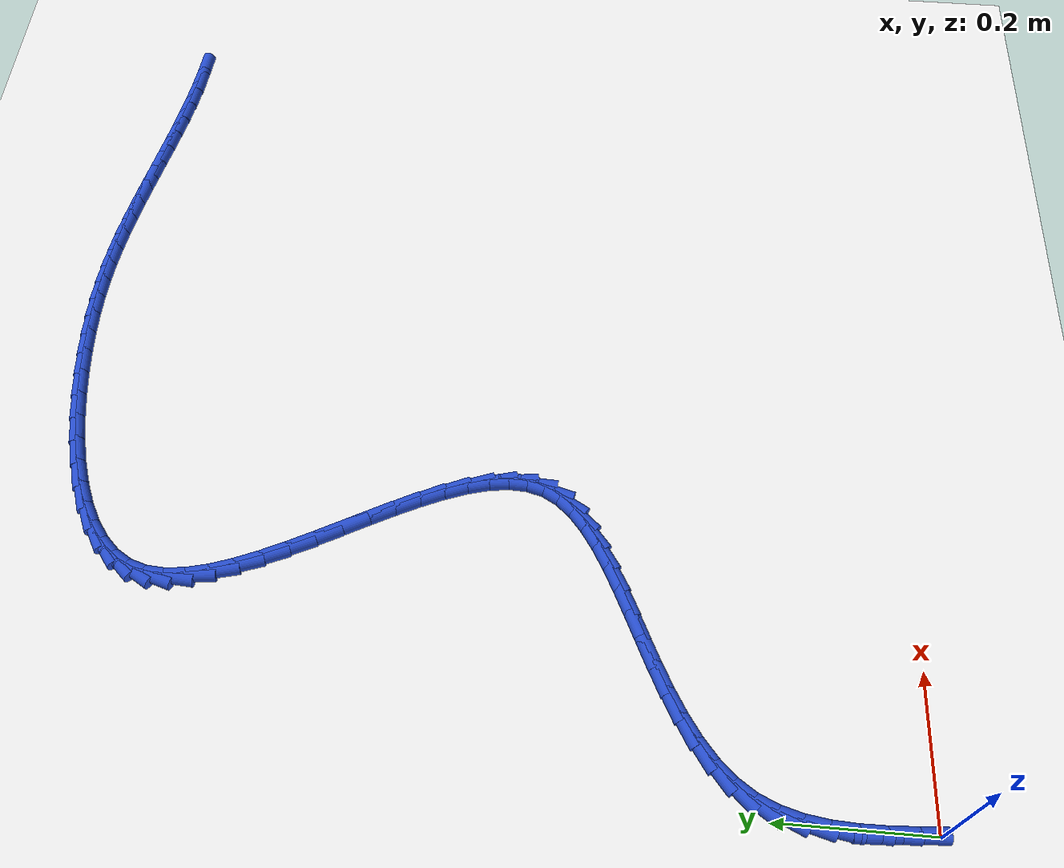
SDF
<sdf version="1.6">
 <world name="default">
  <model name="ground_plane">
   <static>1</static>
   <link name="link">
    <collision name="collision">
     <geometry><plane><normal>0 0 1</normal><size>100 100</size></plane></geometry>
     <surface><friction><ode><mu>100</mu><mu2>50</mu2></ode></friction></surface>
    </collision>
    <visual name="visual">
     <cast_shadows>0</cast_shadows>
     <geometry><plane><normal>0 0 1</normal><size>100 100</size></plane></geometry>
     <material>
      <script><uri>file://media/materials/scripts/gazebo.material</uri><name>Gazebo/WhiteGlow</name></script>
     </material>
    </visual>
   </link>
  </model>
  <model name="line">
   <link name="link_1">
    <pose>-0.002258916926638522 0.032813291596592624 0.01 0 1.57 -1.5216071057443248</pose>
    <collision name="collision">
     <geometry><cylinder><radius>0.01</radius><length>0.08</length></cylinder></geometry>
    </collision>
    <visual name="visual">
     <material>
      <script><name>Gazebo/Blue</name><uri>file://media/materials/scripts/gazebo.material</uri></script>
     </material>
     <geometry><cylinder><radius>0.01</radius><length>0.08</length></cylinder></geometry>
    </visual>
   </link>
   <link name="link_2">
    <pose>-0.0038874369943561913 0.06589384006792409 0.01 0 1.57 -1.5622753820476794</pose>
    <collision name="collision">
     <geometry><cylinder><radius>0.01</radius><length>0.08</length></cylinder></geometry>
    </collision>
    <visual name="visual">
     <material>
      <script><name>Gazebo/Blue</name><uri>file://media/materials/scripts/gazebo.material</uri></script>
     </material>
     <geometry><cylinder><radius>0.01</radius><length>0.08</length></cylinder></geometry>
    </visual>
   </link>
   <link name="link_3">
    <pose>-0.004167445133524468 0.09875420598255086 0.01 0 1.57 1.5152868049445425</pose>
    <collision name="collision">
     <geometry><cylinder><radius>0.01</radius><length>0.08</length></cylinder></geometry>
    </collision>
    <visual name="visual">
     <material>
      <script><name>Gazebo/Blue</name><uri>file://media/materials/scripts/gazebo.material</uri></script>
     </material>
     <geometry><cylinder><radius>0.01</radius><length>0.08</length></cylinder></geometry>
    </visual>
   </link>
   <link name="link_4">
    <pose>-0.002380826274514836 0.13090694990902918 0.01 0 1.57 1.4241909426000947</pose>
    <collision name="collision">
     <geometry><cylinder><radius>0.01</radius><length>0.08</length></cylinder></geometry>
    </collision>
    <visual name="visual">
     <material>
      <script><name>Gazebo/Blue</name><uri>file://media/materials/scripts/gazebo.material</uri></script>
     </material>
     <geometry><cylinder><radius>0.01</radius><length>0.08</length></cylinder></geometry>
    </visual>
   </link>
   <link name="link_5">
    <pose>0.0021905346523012105 0.16186463241591556 0.01 0 1.57 1.301682611133771</pose>
    <collision name="collision">
     <geometry><cylinder><radius>0.01</radius><length>0.08</length></cylinder></geometry>
    </collision>
    <visual name="visual">
     <material>
      <script><name>Gazebo/Blue</name><uri>file://media/materials/scripts/gazebo.material</uri></script>
     </material>
     <geometry><cylinder><radius>0.01</radius><length>0.08</length></cylinder></geometry>
    </visual>
   </link>
   <link name="link_6">
    <pose>0.010264752716552202 0.19113981407176636 0.01 0 1.57 1.1449449397419291</pose>
    <collision name="collision">
     <geometry><cylinder><radius>0.01</radius><length>0.08</length></cylinder></geometry>
    </collision>
    <visual name="visual">
     <material>
      <script><name>Gazebo/Blue</name><uri>file://media/materials/scripts/gazebo.material</uri></script>
     </material>
     <geometry><cylinder><radius>0.01</radius><length>0.08</length></cylinder></geometry>
    </visual>
   </link>
   <link name="link_7">
    <pose>0.022559942987866632 0.21824505544513784 0.01 0 1.57 0.9621370964178155</pose>
    <collision name="collision">
     <geometry><cylinder><radius>0.01</radius><length>0.08</length></cylinder></geometry>
    </collision>
    <visual name="visual">
     <material>
      <script><name>Gazebo/Blue</name><uri>file://media/materials/scripts/gazebo.material</uri></script>
     </material>
     <geometry><cylinder><radius>0.01</radius><length>0.08</length></cylinder></geometry>
    </visual>
   </link>
   <link name="link_8">
    <pose>0.039653928674670505 0.24277278142348785 0.01 0 1.57 0.7976940992005873</pose>
    <collision name="collision">
     <geometry><cylinder><radius>0.01</radius><length>0.08</length></cylinder></geometry>
    </collision>
    <visual name="visual">
     <material>
      <script><name>Gazebo/Blue</name><uri>file://media/materials/scripts/gazebo.material</uri></script>
     </material>
     <geometry><cylinder><radius>0.01</radius><length>0.08</length></cylinder></geometry>
    </visual>
   </link>
   <link name="link_9">
    <pose>0.06119146496127196 0.2648465869963455 0.01 0 1.57 0.66901977606405</pose>
    <collision name="collision">
     <geometry><cylinder><radius>0.01</radius><length>0.08</length></cylinder></geometry>
    </collision>
    <visual name="visual">
     <material>
      <script><name>Gazebo/Blue</name><uri>file://media/materials/scripts/gazebo.material</uri></script>
     </material>
     <geometry><cylinder><radius>0.01</radius><length>0.08</length></cylinder></geometry>
    </visual>
   </link>
   <link name="link_10">
    <pose>0.08643651870270493 0.2848068395326385 0.01 0 1.57 0.5725710399899394</pose>
    <collision name="collision">
     <geometry><cylinder><radius>0.01</radius><length>0.08</length></cylinder></geometry>
    </collision>
    <visual name="visual">
     <material>
      <script><name>Gazebo/Blue</name><uri>file://media/materials/scripts/gazebo.material</uri></script>
     </material>
     <geometry><cylinder><radius>0.01</radius><length>0.08</length></cylinder></geometry>
    </visual>
   </link>
   <link name="link_11">
    <pose>0.11465193104637088 0.3029945472358558 0.01 0 1.57 0.5030810664577722</pose>
    <collision name="collision">
     <geometry><cylinder><radius>0.01</radius><length>0.08</length></cylinder></geometry>
    </collision>
    <visual name="visual">
     <material>
      <script><name>Gazebo/Blue</name><uri>file://media/materials/scripts/gazebo.material</uri></script>
     </material>
     <geometry><cylinder><radius>0.01</radius><length>0.08</length></cylinder></geometry>
    </visual>
   </link>
   <link name="link_12">
    <pose>0.14510054313967136 0.319750718309486 0.01 0 1.57 0.45593777381615547</pose>
    <collision name="collision">
     <geometry><cylinder><radius>0.01</radius><length>0.08</length></cylinder></geometry>
    </collision>
    <visual name="visual">
     <material>
      <script><name>Gazebo/Blue</name><uri>file://media/materials/scripts/gazebo.material</uri></script>
     </material>
     <geometry><cylinder><radius>0.01</radius><length>0.08</length></cylinder></geometry>
    </visual>
   </link>
   <link name="link_13">
    <pose>0.17704519613000783 0.3354163609570181 0.01 0 1.57 0.42791610944207825</pose>
    <collision name="collision">
     <geometry><cylinder><radius>0.01</radius><length>0.08</length></cylinder></geometry>
    </collision>
    <visual name="visual">
     <material>
      <script><name>Gazebo/Blue</name><uri>file://media/materials/scripts/gazebo.material</uri></script>
     </material>
     <geometry><cylinder><radius>0.01</radius><length>0.08</length></cylinder></geometry>
    </visual>
   </link>
   <link name="link_14">
    <pose>0.20974873116478177 0.350332483381941 0.01 0 1.57 0.41728111065739104</pose>
    <collision name="collision">
     <geometry><cylinder><radius>0.01</radius><length>0.08</length></cylinder></geometry>
    </collision>
    <visual name="visual">
     <material>
      <script><name>Gazebo/Blue</name><uri>file://media/materials/scripts/gazebo.material</uri></script>
     </material>
     <geometry><cylinder><radius>0.01</radius><length>0.08</length></cylinder></geometry>
    </visual>
   </link>
   <link name="link_15">
    <pose>0.24247398939139475 0.36484009378774346 0.01 0 1.57 0.423780656820157</pose>
    <collision name="collision">
     <geometry><cylinder><radius>0.01</radius><length>0.08</length></cylinder></geometry>
    </collision>
    <visual name="visual">
     <material>
      <script><name>Gazebo/Blue</name><uri>file://media/materials/scripts/gazebo.material</uri></script>
     </material>
     <geometry><cylinder><radius>0.01</radius><length>0.08</length></cylinder></geometry>
    </visual>
   </link>
   <link name="link_16">
    <pose>0.27448381195724836 0.3792802003779146 0.01 0 1.57 0.4487464978163053</pose>
    <collision name="collision">
     <geometry><cylinder><radius>0.01</radius><length>0.08</length></cylinder></geometry>
    </collision>
    <visual name="visual">
     <material>
      <script><name>Gazebo/Blue</name><uri>file://media/materials/scripts/gazebo.material</uri></script>
     </material>
     <geometry><cylinder><radius>0.01</radius><length>0.08</length></cylinder></geometry>
    </visual>
   </link>
   <link name="link_17">
    <pose>0.3050410400097441 0.39399381135594297 0.01 0 1.57 0.4953976195313095</pose>
    <collision name="collision">
     <geometry><cylinder><radius>0.01</radius><length>0.08</length></cylinder></geometry>
    </collision>
    <visual name="visual">
     <material>
      <script><name>Gazebo/Blue</name><uri>file://media/materials/scripts/gazebo.material</uri></script>
     </material>
     <geometry><cylinder><radius>0.01</radius><length>0.08</length></cylinder></geometry>
    </visual>
   </link>
   <link name="link_18">
    <pose>0.3334085146962832 0.40932193492531765 0.01 0 1.57 0.5693601594862281</pose>
    <collision name="collision">
     <geometry><cylinder><radius>0.01</radius><length>0.08</length></cylinder></geometry>
    </collision>
    <visual name="visual">
     <material>
      <script><name>Gazebo/Blue</name><uri>file://media/materials/scripts/gazebo.material</uri></script>
     </material>
     <geometry><cylinder><radius>0.01</radius><length>0.08</length></cylinder></geometry>
    </visual>
   </link>
   <link name="link_19">
    <pose>0.35884907716426745 0.42560557928952747 0.01 0 1.57 0.6791766678790981</pose>
    <collision name="collision">
     <geometry><cylinder><radius>0.01</radius><length>0.08</length></cylinder></geometry>
    </collision>
    <visual name="visual">
     <material>
      <script><name>Gazebo/Blue</name><uri>file://media/materials/scripts/gazebo.material</uri></script>
     </material>
     <geometry><cylinder><radius>0.01</radius><length>0.08</length></cylinder></geometry>
    </visual>
   </link>
   <link name="link_20">
    <pose>0.38062556856109836 0.4431857526520613 0.01 0 1.57 0.835705487997839</pose>
    <collision name="collision">
     <geometry><cylinder><radius>0.01</radius><length>0.08</length></cylinder></geometry>
    </collision>
    <visual name="visual">
     <material>
      <script><name>Gazebo/Blue</name><uri>file://media/materials/scripts/gazebo.material</uri></script>
     </material>
     <geometry><cylinder><radius>0.01</radius><length>0.08</length></cylinder></geometry>
    </visual>
   </link>
   <link name="link_21">
    <pose>0.39800083003417747 0.462403463216408 0.01 0 1.57 1.0472255539942117</pose>
    <collision name="collision">
     <geometry><cylinder><radius>0.01</radius><length>0.08</length></cylinder></geometry>
    </collision>
    <visual name="visual">
     <material>
      <script><name>Gazebo/Blue</name><uri>file://media/materials/scripts/gazebo.material</uri></script>
     </material>
     <geometry><cylinder><radius>0.01</radius><length>0.08</length></cylinder></geometry>
    </visual>
   </link>
   <link name="link_22">
    <pose>0.410237702730906 0.48359971918605643 0.01 0 1.57 1.3004957251476283</pose>
    <collision name="collision">
     <geometry><cylinder><radius>0.01</radius><length>0.08</length></cylinder></geometry>
    </collision>
    <visual name="visual">
     <material>
      <script><name>Gazebo/Blue</name><uri>file://media/materials/scripts/gazebo.material</uri></script>
     </material>
     <geometry><cylinder><radius>0.01</radius><length>0.08</length></cylinder></geometry>
    </visual>
   </link>
   <link name="link_23">
    <pose>0.4167371741477261 0.5070565888664732 0.01 0 1.57 1.5288175513280917</pose>
    <collision name="collision">
     <geometry><cylinder><radius>0.01</radius><length>0.08</length></cylinder></geometry>
    </collision>
    <visual name="visual">
     <material>
      <script><name>Gazebo/Blue</name><uri>file://media/materials/scripts/gazebo.material</uri></script>
     </material>
     <geometry><cylinder><radius>0.01</radius><length>0.08</length></cylinder></geometry>
    </visual>
   </link>
   <link name="link_24">
    <pose>0.4178128895889665 0.5326667567068034 0.01 0 1.57 -1.4383247169666176</pose>
    <collision name="collision">
     <geometry><cylinder><radius>0.01</radius><length>0.08</length></cylinder></geometry>
    </collision>
    <visual name="visual">
     <material>
      <script><name>Gazebo/Blue</name><uri>file://media/materials/scripts/gazebo.material</uri></script>
     </material>
     <geometry><cylinder><radius>0.01</radius><length>0.08</length></cylinder></geometry>
    </visual>
   </link>
   <link name="link_25">
    <pose>0.4141486992704831 0.5601649598786541 0.01 0 1.57 -1.3116784470120486</pose>
    <collision name="collision">
     <geometry><cylinder><radius>0.01</radius><length>0.08</length></cylinder></geometry>
    </collision>
    <visual name="visual">
     <material>
      <script><name>Gazebo/Blue</name><uri>file://media/materials/scripts/gazebo.material</uri></script>
     </material>
     <geometry><cylinder><radius>0.01</radius><length>0.08</length></cylinder></geometry>
    </visual>
   </link>
   <link name="link_26">
    <pose>0.40642951176340913 0.5892854840082056 0.01 0 1.57 -1.2218316629321162</pose>
    <collision name="collision">
     <geometry><cylinder><radius>0.01</radius><length>0.08</length></cylinder></geometry>
    </collision>
    <visual name="visual">
     <material>
      <script><name>Gazebo/Blue</name><uri>file://media/materials/scripts/gazebo.material</uri></script>
     </material>
     <geometry><cylinder><radius>0.01</radius><length>0.08</length></cylinder></geometry>
    </visual>
   </link>
   <link name="link_27">
    <pose>0.39534023563887816 0.6197626147216379 0.01 0 1.57 -1.159358208141954</pose>
    <collision name="collision">
     <geometry><cylinder><radius>0.01</radius><length>0.08</length></cylinder></geometry>
    </collision>
    <visual name="visual">
     <material>
      <script><name>Gazebo/Blue</name><uri>file://media/materials/scripts/gazebo.material</uri></script>
     </material>
     <geometry><cylinder><radius>0.01</radius><length>0.08</length></cylinder></geometry>
    </visual>
   </link>
   <link name="link_28">
    <pose>0.3815657794680231 0.6513306376451315 0.01 0 1.57 -1.1176216918937338</pose>
    <collision name="collision">
     <geometry><cylinder><radius>0.01</radius><length>0.08</length></cylinder></geometry>
    </collision>
    <visual name="visual">
     <material>
      <script><name>Gazebo/Blue</name><uri>file://media/materials/scripts/gazebo.material</uri></script>
     </material>
     <geometry><cylinder><radius>0.01</radius><length>0.08</length></cylinder></geometry>
    </visual>
   </link>
   <link name="link_29">
    <pose>0.36579105182197763 0.6837238384048671 0.01 0 1.57 -1.0923596198112473</pose>
    <collision name="collision">
     <geometry><cylinder><radius>0.01</radius><length>0.08</length></cylinder></geometry>
    </collision>
    <visual name="visual">
     <material>
      <script><name>Gazebo/Blue</name><uri>file://media/materials/scripts/gazebo.material</uri></script>
     </material>
     <geometry><cylinder><radius>0.01</radius><length>0.08</length></cylinder></geometry>
    </visual>
   </link>
   <link name="link_30">
    <pose>0.3487009612718749 0.7166765026270242 0.01 0 1.57 -1.0810937129273226</pose>
    <collision name="collision">
     <geometry><cylinder><radius>0.01</radius><length>0.08</length></cylinder></geometry>
    </collision>
    <visual name="visual">
     <material>
      <script><name>Gazebo/Blue</name><uri>file://media/materials/scripts/gazebo.material</uri></script>
     </material>
     <geometry><cylinder><radius>0.01</radius><length>0.08</length></cylinder></geometry>
    </visual>
   </link>
   <link name="link_31">
    <pose>0.3309804163888484 0.7499229159377837 0.01 0 1.57 -1.0827192904570244</pose>
    <collision name="collision">
     <geometry><cylinder><radius>0.01</radius><length>0.08</length></cylinder></geometry>
    </collision>
    <visual name="visual">
     <material>
      <script><name>Gazebo/Blue</name><uri>file://media/materials/scripts/gazebo.material</uri></script>
     </material>
     <geometry><cylinder><radius>0.01</radius><length>0.08</length></cylinder></geometry>
    </visual>
   </link>
   <link name="link_32">
    <pose>0.3133143257440314 0.783197363963326 0.01 0 1.57 -1.0973094606091522</pose>
    <collision name="collision">
     <geometry><cylinder><radius>0.01</radius><length>0.08</length></cylinder></geometry>
    </collision>
    <visual name="visual">
     <material>
      <script><name>Gazebo/Blue</name><uri>file://media/materials/scripts/gazebo.material</uri></script>
     </material>
     <geometry><cylinder><radius>0.01</radius><length>0.08</length></cylinder></geometry>
    </visual>
   </link>
   <link name="link_33">
    <pose>0.29638759790855707 0.8162341323298307 0.01 0 1.57 -1.1261172318951667</pose>
    <collision name="collision">
     <geometry><cylinder><radius>0.01</radius><length>0.08</length></cylinder></geometry>
    </collision>
    <visual name="visual">
     <material>
      <script><name>Gazebo/Blue</name><uri>file://media/materials/scripts/gazebo.material</uri></script>
     </material>
     <geometry><cylinder><radius>0.01</radius><length>0.08</length></cylinder></geometry>
    </visual>
   </link>
   <link name="link_34">
    <pose>0.280885141453559 0.8487675066634789 0.01 0 1.57 -1.171769951742503</pose>
    <collision name="collision">
     <geometry><cylinder><radius>0.01</radius><length>0.08</length></cylinder></geometry>
    </collision>
    <visual name="visual">
     <material>
      <script><name>Gazebo/Blue</name><uri>file://media/materials/scripts/gazebo.material</uri></script>
     </material>
     <geometry><cylinder><radius>0.01</radius><length>0.08</length></cylinder></geometry>
    </visual>
   </link>
   <link name="link_35">
    <pose>0.26749186495017024 0.8805317725904501 0.01 0 1.57 -1.2386546045010396</pose>
    <collision name="collision">
     <geometry><cylinder><radius>0.01</radius><length>0.08</length></cylinder></geometry>
    </collision>
    <visual name="visual">
     <material>
      <script><name>Gazebo/Blue</name><uri>file://media/materials/scripts/gazebo.material</uri></script>
     </material>
     <geometry><cylinder><radius>0.01</radius><length>0.08</length></cylinder></geometry>
    </visual>
   </link>
   <link name="link_36">
    <pose>0.25689267696952445 0.9112612157369254 0.01 0 1.57 -1.3334126332315617</pose>
    <collision name="collision">
     <geometry><cylinder><radius>0.01</radius><length>0.08</length></cylinder></geometry>
    </collision>
    <visual name="visual">
     <material>
      <script><name>Gazebo/Blue</name><uri>file://media/materials/scripts/gazebo.material</uri></script>
     </material>
     <geometry><cylinder><radius>0.01</radius><length>0.08</length></cylinder></geometry>
    </visual>
   </link>
   <link name="link_37">
    <pose>0.24977248608275465 0.9406901217290846 0.01 0 1.57 -1.4650897454526481</pose>
    <collision name="collision">
     <geometry><cylinder><radius>0.01</radius><length>0.08</length></cylinder></geometry>
    </collision>
    <visual name="visual">
     <material>
      <script><name>Gazebo/Blue</name><uri>file://media/materials/scripts/gazebo.material</uri></script>
     </material>
     <geometry><cylinder><radius>0.01</radius><length>0.08</length></cylinder></geometry>
    </visual>
   </link>
   <link name="link_38">
    <pose>0.24681620086099437 0.9685527761931083 0.01 0 1.57 1.4982202590435205</pose>
    <collision name="collision">
     <geometry><cylinder><radius>0.01</radius><length>0.08</length></cylinder></geometry>
    </collision>
    <visual name="visual">
     <material>
      <script><name>Gazebo/Blue</name><uri>file://media/materials/scripts/gazebo.material</uri></script>
     </material>
     <geometry><cylinder><radius>0.01</radius><length>0.08</length></cylinder></geometry>
    </visual>
   </link>
   <link name="link_39">
    <pose>0.24870872987537687 0.9945834647551766 0.01 0 1.57 1.270220806164153</pose>
    <collision name="collision">
     <geometry><cylinder><radius>0.01</radius><length>0.08</length></cylinder></geometry>
    </collision>
    <visual name="visual">
     <material>
      <script><name>Gazebo/Blue</name><uri>file://media/materials/scripts/gazebo.material</uri></script>
     </material>
     <geometry><cylinder><radius>0.01</radius><length>0.08</length></cylinder></geometry>
    </visual>
   </link>
   <link name="link_40">
    <pose>0.2561277604412661 1.0185183729161589 0.01 0 1.57 1.0262948243847396</pose>
    <collision name="collision">
     <geometry><cylinder><radius>0.01</radius><length>0.08</length></cylinder></geometry>
    </collision>
    <visual name="visual">
     <material>
      <script><name>Gazebo/Blue</name><uri>file://media/materials/scripts/gazebo.material</uri></script>
     </material>
     <geometry><cylinder><radius>0.01</radius><length>0.08</length></cylinder></geometry>
    </visual>
   </link>
   <link name="link_41">
    <pose>0.2692696974094262 1.0402203090804834 0.01 0 1.57 0.8184200096045168</pose>
    <collision name="collision">
     <geometry><cylinder><radius>0.01</radius><length>0.08</length></cylinder></geometry>
    </collision>
    <visual name="visual">
     <material>
      <script><name>Gazebo/Blue</name><uri>file://media/materials/scripts/gazebo.material</uri></script>
     </material>
     <geometry><cylinder><radius>0.01</radius><length>0.08</length></cylinder></geometry>
    </visual>
   </link>
   <link name="link_42">
    <pose>0.28755596041702075 1.059755976215914 0.01 0 1.57 0.6537644450391985</pose>
    <collision name="collision">
     <geometry><cylinder><radius>0.01</radius><length>0.08</length></cylinder></geometry>
    </collision>
    <visual name="visual">
     <material>
      <script><name>Gazebo/Blue</name><uri>file://media/materials/scripts/gazebo.material</uri></script>
     </material>
     <geometry><cylinder><radius>0.01</radius><length>0.08</length></cylinder></geometry>
    </visual>
   </link>
   <link name="link_43">
    <pose>0.31033779546940155 1.0772105396063525 0.01 0 1.57 0.5259772832186632</pose>
    <collision name="collision">
     <geometry><cylinder><radius>0.01</radius><length>0.08</length></cylinder></geometry>
    </collision>
    <visual name="visual">
     <material>
      <script><name>Gazebo/Blue</name><uri>file://media/materials/scripts/gazebo.material</uri></script>
     </material>
     <geometry><cylinder><radius>0.01</radius><length>0.08</length></cylinder></geometry>
    </visual>
   </link>
   <link name="link_44">
    <pose>0.3369664485719204 1.092669164535702 0.01 0 1.57 0.42635663022842796</pose>
    <collision name="collision">
     <geometry><cylinder><radius>0.01</radius><length>0.08</length></cylinder></geometry>
    </collision>
    <visual name="visual">
     <material>
      <script><name>Gazebo/Blue</name><uri>file://media/materials/scripts/gazebo.material</uri></script>
     </material>
     <geometry><cylinder><radius>0.01</radius><length>0.08</length></cylinder></geometry>
    </visual>
   </link>
   <link name="link_45">
    <pose>0.3667931657299286 1.1062170162878644 0.01 0 1.57 0.34738293662290737</pose>
    <collision name="collision">
     <geometry><cylinder><radius>0.01</radius><length>0.08</length></cylinder></geometry>
    </collision>
    <visual name="visual">
     <material>
      <script><name>Gazebo/Blue</name><uri>file://media/materials/scripts/gazebo.material</uri></script>
     </material>
     <geometry><cylinder><radius>0.01</radius><length>0.08</length></cylinder></geometry>
    </visual>
   </link>
   <link name="link_46">
    <pose>0.3991691929487781 1.117939260146742 0.01 0 1.57 0.2833763517244959</pose>
    <collision name="collision">
     <geometry><cylinder><radius>0.01</radius><length>0.08</length></cylinder></geometry>
    </collision>
    <visual name="visual">
     <material>
      <script><name>Gazebo/Blue</name><uri>file://media/materials/scripts/gazebo.material</uri></script>
     </material>
     <geometry><cylinder><radius>0.01</radius><length>0.08</length></cylinder></geometry>
    </visual>
   </link>
   <link name="link_47">
    <pose>0.4334457762338202 1.1279210613962372 0.01 0 1.57 0.23020781046405236</pose>
    <collision name="collision">
     <geometry><cylinder><radius>0.01</radius><length>0.08</length></cylinder></geometry>
    </collision>
    <visual name="visual">
     <material>
      <script><name>Gazebo/Blue</name><uri>file://media/materials/scripts/gazebo.material</uri></script>
     </material>
     <geometry><cylinder><radius>0.01</radius><length>0.08</length></cylinder></geometry>
    </visual>
   </link>
   <link name="link_48">
    <pose>0.468974161590407 1.1362475853202518 0.01 0 1.57 0.18486044377016012</pose>
    <collision name="collision">
     <geometry><cylinder><radius>0.01</radius><length>0.08</length></cylinder></geometry>
    </collision>
    <visual name="visual">
     <material>
      <script><name>Gazebo/Blue</name><uri>file://media/materials/scripts/gazebo.material</uri></script>
     </material>
     <geometry><cylinder><radius>0.01</radius><length>0.08</length></cylinder></geometry>
    </visual>
   </link>
   <link name="link_49">
    <pose>0.5051055950238896 1.1430039972026889 0.01 0 1.57 0.14505570325811318</pose>
    <collision name="collision">
     <geometry><cylinder><radius>0.01</radius><length>0.08</length></cylinder></geometry>
    </collision>
    <visual name="visual">
     <material>
      <script><name>Gazebo/Blue</name><uri>file://media/materials/scripts/gazebo.material</uri></script>
     </material>
     <geometry><cylinder><radius>0.01</radius><length>0.08</length></cylinder></geometry>
    </visual>
   </link>
   <link name="link_50">
    <pose>0.5411913225396201 1.1482754623274503 0.01 0 1.57 0.10896328220465569</pose>
    <collision name="collision">
     <geometry><cylinder><radius>0.01</radius><length>0.08</length></cylinder></geometry>
    </collision>
    <visual name="visual">
     <material>
      <script><name>Gazebo/Blue</name><uri>file://media/materials/scripts/gazebo.material</uri></script>
     </material>
     <geometry><cylinder><radius>0.01</radius><length>0.08</length></cylinder></geometry>
    </visual>
   </link>
   <link name="link_51">
    <pose>0.5765825901429498 1.1521471459784385 0.01 0 1.57 0.07490406522854538</pose>
    <collision name="collision">
     <geometry><cylinder><radius>0.01</radius><length>0.08</length></cylinder></geometry>
    </collision>
    <visual name="visual">
     <material>
      <script><name>Gazebo/Blue</name><uri>file://media/materials/scripts/gazebo.material</uri></script>
     </material>
     <geometry><cylinder><radius>0.01</radius><length>0.08</length></cylinder></geometry>
    </visual>
   </link>
   <link name="link_52">
    <pose>0.6106499395034645 1.1547037120324795 0.01 0 1.57 0.04030807978802277</pose>
    <collision name="collision">
     <geometry><cylinder><radius>0.01</radius><length>0.08</length></cylinder></geometry>
    </collision>
    <visual name="visual">
     <material>
      <script><name>Gazebo/Blue</name><uri>file://media/materials/scripts/gazebo.material</uri></script>
     </material>
     <geometry><cylinder><radius>0.01</radius><length>0.08</length></cylinder></geometry>
    </visual>
   </link>
   <link name="link_53">
    <pose>0.6432307457716007 1.1560176934748234 0.01 0 1.57 0.004184946276572827</pose>
    <collision name="collision">
     <geometry><cylinder><radius>0.01</radius><length>0.08</length></cylinder></geometry>
    </collision>
    <visual name="visual">
     <material>
      <script><name>Gazebo/Blue</name><uri>file://media/materials/scripts/gazebo.material</uri></script>
     </material>
     <geometry><cylinder><radius>0.01</radius><length>0.08</length></cylinder></geometry>
    </visual>
   </link>
   <link name="link_54">
    <pose>0.6746423840887169 1.1561491502610755 0.01 0 1.57 -0.03241245800114558</pose>
    <collision name="collision">
     <geometry><cylinder><radius>0.01</radius><length>0.08</length></cylinder></geometry>
    </collision>
    <visual name="visual">
     <material>
      <script><name>Gazebo/Blue</name><uri>file://media/materials/scripts/gazebo.material</uri></script>
     </material>
     <geometry><cylinder><radius>0.01</radius><length>0.08</length></cylinder></geometry>
    </visual>
   </link>
   <link name="link_55">
    <pose>0.7052241592010271 1.1551575724955554 0.01 0 1.57 -0.06819052367357738</pose>
    <collision name="collision">
     <geometry><cylinder><radius>0.01</radius><length>0.08</length></cylinder></geometry>
    </collision>
    <visual name="visual">
     <material>
      <script><name>Gazebo/Blue</name><uri>file://media/materials/scripts/gazebo.material</uri></script>
     </material>
     <geometry><cylinder><radius>0.01</radius><length>0.08</length></cylinder></geometry>
    </visual>
   </link>
   <link name="link_56">
    <pose>0.7353153758547443 1.1531024502825835 0.01 0 1.57 -0.10181067429609024</pose>
    <collision name="collision">
     <geometry><cylinder><radius>0.01</radius><length>0.08</length></cylinder></geometry>
    </collision>
    <visual name="visual">
     <material>
      <script><name>Gazebo/Blue</name><uri>file://media/materials/scripts/gazebo.material</uri></script>
     </material>
     <geometry><cylinder><radius>0.01</radius><length>0.08</length></cylinder></geometry>
    </visual>
   </link>
   <link name="link_57">
    <pose>0.7652534905579499 1.1500438554610093 0.01 0 1.57 -0.13138188576686016</pose>
    <collision name="collision">
     <geometry><cylinder><radius>0.01</radius><length>0.08</length></cylinder></geometry>
    </collision>
    <visual name="visual">
     <material>
      <script><name>Gazebo/Blue</name><uri>file://media/materials/scripts/gazebo.material</uri></script>
     </material>
     <geometry><cylinder><radius>0.01</radius><length>0.08</length></cylinder></geometry>
    </visual>
   </link>
   <link name="link_58">
    <pose>0.7952581128041347 1.1460789523181196 0.01 0 1.57 -0.15537010714341098</pose>
    <collision name="collision">
     <geometry><cylinder><radius>0.01</radius><length>0.08</length></cylinder></geometry>
    </collision>
    <visual name="visual">
     <material>
      <script><name>Gazebo/Blue</name><uri>file://media/materials/scripts/gazebo.material</uri></script>
     </material>
     <geometry><cylinder><radius>0.01</radius><length>0.08</length></cylinder></geometry>
    </visual>
   </link>
   <link name="link_59">
    <pose>0.8253620751071308 1.141363693354984 0.01 0 1.57 -0.1737601401998908</pose>
    <collision name="collision">
     <geometry><cylinder><radius>0.01</radius><length>0.08</length></cylinder></geometry>
    </collision>
    <visual name="visual">
     <material>
      <script><name>Gazebo/Blue</name><uri>file://media/materials/scripts/gazebo.material</uri></script>
     </material>
     <geometry><cylinder><radius>0.01</radius><length>0.08</length></cylinder></geometry>
    </visual>
   </link>
   <link name="link_60">
    <pose>0.85558165248856 1.136059242557477 0.01 0 1.57 -0.18667099659686182</pose>
    <collision name="collision">
     <geometry><cylinder><radius>0.01</radius><length>0.08</length></cylinder></geometry>
    </collision>
    <visual name="visual">
     <material>
      <script><name>Gazebo/Blue</name><uri>file://media/materials/scripts/gazebo.material</uri></script>
     </material>
     <geometry><cylinder><radius>0.01</radius><length>0.08</length></cylinder></geometry>
    </visual>
   </link>
   <link name="link_61">
    <pose>0.8859331199700451 1.1303267639114734 0.01 0 1.57 -0.19422252333711698</pose>
    <collision name="collision">
     <geometry><cylinder><radius>0.01</radius><length>0.08</length></cylinder></geometry>
    </collision>
    <visual name="visual">
     <material>
      <script><name>Gazebo/Blue</name><uri>file://media/materials/scripts/gazebo.material</uri></script>
     </material>
     <geometry><cylinder><radius>0.01</radius><length>0.08</length></cylinder></geometry>
    </visual>
   </link>
   <link name="link_62">
    <pose>0.9164327525732083 1.1243274214028485 0.01 0 1.57 -0.19652455197307178</pose>
    <collision name="collision">
     <geometry><cylinder><radius>0.01</radius><length>0.08</length></cylinder></geometry>
    </collision>
    <visual name="visual">
     <material>
      <script><name>Gazebo/Blue</name><uri>file://media/materials/scripts/gazebo.material</uri></script>
     </material>
     <geometry><cylinder><radius>0.01</radius><length>0.08</length></cylinder></geometry>
    </visual>
   </link>
   <link name="link_63">
    <pose>0.9470968253196723 1.1182223790174772 0.01 0 1.57 -0.19367134028679195</pose>
    <collision name="collision">
     <geometry><cylinder><radius>0.01</radius><length>0.08</length></cylinder></geometry>
    </collision>
    <visual name="visual">
     <material>
      <script><name>Gazebo/Blue</name><uri>file://media/materials/scripts/gazebo.material</uri></script>
     </material>
     <geometry><cylinder><radius>0.01</radius><length>0.08</length></cylinder></geometry>
    </visual>
   </link>
   <link name="link_64">
    <pose>0.9779416132310593 1.112172800741235 0.01 0 1.57 -0.1857405626639809</pose>
    <collision name="collision">
     <geometry><cylinder><radius>0.01</radius><length>0.08</length></cylinder></geometry>
    </collision>
    <visual name="visual">
     <material>
      <script><name>Gazebo/Blue</name><uri>file://media/materials/scripts/gazebo.material</uri></script>
     </material>
     <geometry><cylinder><radius>0.01</radius><length>0.08</length></cylinder></geometry>
    </visual>
   </link>
   <link name="link_65">
    <pose>1.0089833913289916 1.1063398505599968 0.01 0 1.57 -0.17279628384267373</pose>
    <collision name="collision">
     <geometry><cylinder><radius>0.01</radius><length>0.08</length></cylinder></geometry>
    </collision>
    <visual name="visual">
     <material>
      <script><name>Gazebo/Blue</name><uri>file://media/materials/scripts/gazebo.material</uri></script>
     </material>
     <geometry><cylinder><radius>0.01</radius><length>0.08</length></cylinder></geometry>
    </visual>
   </link>
   <link name="link_66">
    <pose>1.0402384346350921 1.1008846924596376 0.01 0 1.57 -0.15489553675946843</pose>
    <collision name="collision">
     <geometry><cylinder><radius>0.01</radius><length>0.08</length></cylinder></geometry>
    </collision>
    <visual name="visual">
     <material>
      <script><name>Gazebo/Blue</name><uri>file://media/materials/scripts/gazebo.material</uri></script>
     </material>
     <geometry><cylinder><radius>0.01</radius><length>0.08</length></cylinder></geometry>
    </visual>
   </link>
   <link name="link_67">
    <pose>1.0717230181709827 1.0959684904260327 0.01 0 1.57 -0.13209824324151964</pose>
    <collision name="collision">
     <geometry><cylinder><radius>0.01</radius><length>0.08</length></cylinder></geometry>
    </collision>
    <visual name="visual">
     <material>
      <script><name>Gazebo/Blue</name><uri>file://media/materials/scripts/gazebo.material</uri></script>
     </material>
     <geometry><cylinder><radius>0.01</radius><length>0.08</length></cylinder></geometry>
    </visual>
   </link>
   <link name="link_68">
    <pose>1.103453416958286 1.0917524084450565 0.01 0 1.57 -0.10448020860099032</pose>
    <collision name="collision">
     <geometry><cylinder><radius>0.01</radius><length>0.08</length></cylinder></geometry>
    </collision>
    <visual name="visual">
     <material>
      <script><name>Gazebo/Blue</name><uri>file://media/materials/scripts/gazebo.material</uri></script>
     </material>
     <geometry><cylinder><radius>0.01</radius><length>0.08</length></cylinder></geometry>
    </visual>
   </link>
   <link name="link_69">
    <pose>1.1354459060186242 1.0883976105025845 0.01 0 1.57 -0.0761364733005052</pose>
    <collision name="collision">
     <geometry><cylinder><radius>0.01</radius><length>0.08</length></cylinder></geometry>
    </collision>
    <visual name="visual">
     <material>
      <script><name>Gazebo/Blue</name><uri>file://media/materials/scripts/gazebo.material</uri></script>
     </material>
     <geometry><cylinder><radius>0.01</radius><length>0.08</length></cylinder></geometry>
    </visual>
   </link>
   <link name="link_281">
    <pose>-0.002407377299530206 0.032918596016043675 0.01 0 1.57 -1.4920733185402315</pose>
    <collision name="collision">
     <geometry><cylinder><radius>0.01</radius><length>0.08</length></cylinder></geometry>
    </collision>
    <visual name="visual">
     <material>
      <script><name>Gazebo/Blue</name><uri>file://media/materials/scripts/gazebo.material</uri></script>
     </material>
     <geometry><cylinder><radius>0.01</radius><length>0.08</length></cylinder></geometry>
    </visual>
   </link>
   <link name="link_282">
    <pose>-0.0050751199774898455 0.06673627542353515 0.01 0 1.57 -1.4948950232713514</pose>
    <collision name="collision">
     <geometry><cylinder><radius>0.01</radius><length>0.08</length></cylinder></geometry>
    </collision>
    <visual name="visual">
     <material>
      <script><name>Gazebo/Blue</name><uri>file://media/materials/scripts/gazebo.material</uri></script>
     </material>
     <geometry><cylinder><radius>0.01</radius><length>0.08</length></cylinder></geometry>
    </visual>
   </link>
  </model>
 </world>
</sdf>
